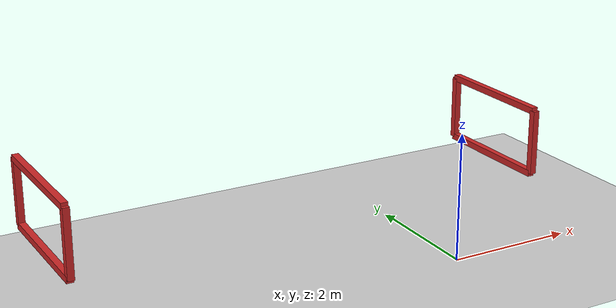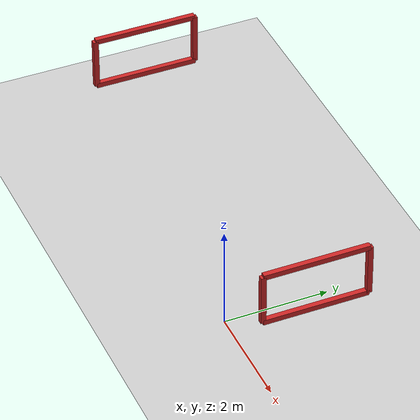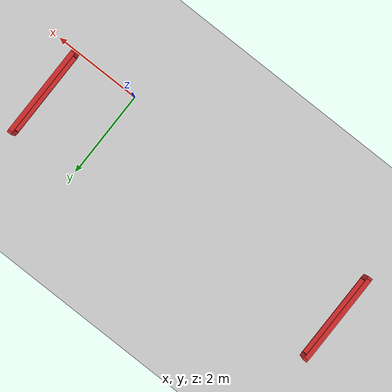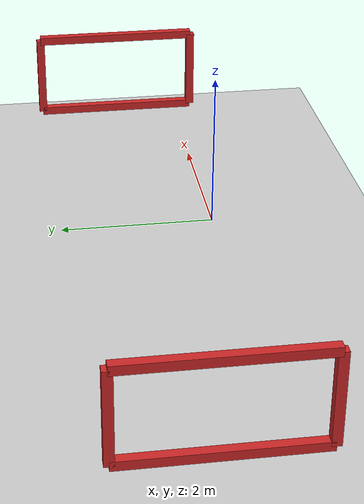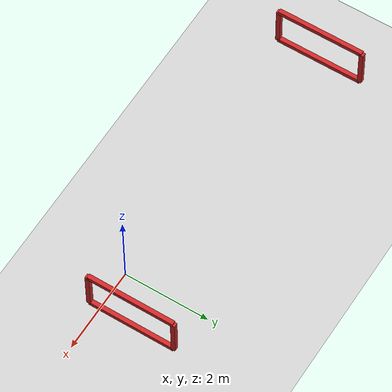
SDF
<?xml version="1.0" ?>
<sdf version="1.5">
  <world name="default">
    <!-- A ground plane -->
    <include>
      <uri>model://ground_plane</uri>
    </include>
    <!-- A global light source -->
    <include>
      <uri>model://sun</uri>
    </include>

    <!-- Only one ROS interface plugin is required per world, as any other plugin can connect a Gazebo
         topic to a ROS topic (or vise versa). -->
    <plugin name="ros_interface_plugin" filename="librotors_gazebo_ros_interface_plugin.so"/>

    <model name="right_wall1">
      <static>true</static>
      <pose>1.4 0.1 1.6 0 0 0</pose>
      <link name="link">
        <collision name="collision">
          <geometry>
            <box>
              <size>0.1 0.1 1.0</size>
            </box>
          </geometry>
        </collision>
        <visual name="visual">
          <geometry>
            <box>
              <size>0.1 0.1 1.0</size>
            </box>
          </geometry>
          <material>
            <script>
              <uri>file://media/materials/scripts/gazebo.material</uri>
              <name>Gazebo/RedGlow</name>
            </script>
          </material>
        </visual>
      </link>
    </model>
    <model name="left_wall1">
      <static>true</static>
      <pose>1.4 2.1 1.6 0 0 0</pose>
      <link name="link">
        <collision name="collision">
          <geometry>
            <box>
              <size>0.1 0.1 1.0</size>
            </box>
          </geometry>
        </collision>
        <visual name="visual">
          <geometry>
            <box>
              <size>0.1 0.1 1.0</size>
            </box>
          </geometry>
          <material>
            <script>
              <uri>file://media/materials/scripts/gazebo.material</uri>
              <name>Gazebo/RedGlow</name>
            </script>
          </material>
        </visual>
      </link>
    </model>
    <model name="up_wall1">
      <static>true</static>
      <pose>1.4 1.1 2.1 1.570796327 0 0</pose>
      <link name="link">
        <collision name="collision">
          <geometry>
            <box>
              <size>0.1 0.1 2.0</size>
            </box>
          </geometry>
        </collision>
        <visual name="visual">
          <geometry>
            <box>
              <size>0.1 0.1 2.0</size>
            </box>
          </geometry>
          <material>
            <script>
              <uri>file://media/materials/scripts/gazebo.material</uri>
              <name>Gazebo/RedGlow</name>
            </script>
          </material>
        </visual>
      </link>
    </model>
    <model name="down_wall1">
      <static>true</static>
      <pose>1.4 1.1 1.1 1.570796327 0 0</pose>
      <link name="link">
        <collision name="collision">
          <geometry>
            <box>
              <size>0.1 0.1 2.0</size>
            </box>
          </geometry>
        </collision>
        <visual name="visual">
          <geometry>
            <box>
              <size>0.1 0.1 2.0</size>
            </box>
          </geometry>
          <material>
            <script>
              <uri>file://media/materials/scripts/gazebo.material</uri>
              <name>Gazebo/RedGlow</name>
            </script>
          </material>
        </visual>
      </link>
    </model>

    <model name="right_wall8">
      <static>true</static>
      <pose>-6.0 0.0 1.6 0 0 0</pose>
      <link name="link">
        <collision name="collision">
          <geometry>
            <box>
              <size>0.1 0.1 1.0</size>
            </box>
          </geometry>
        </collision>
        <visual name="visual">
          <geometry>
            <box>
              <size>0.1 0.1 1.0</size>
            </box>
          </geometry>
          <material>
            <script>
              <uri>file://media/materials/scripts/gazebo.material</uri>
              <name>Gazebo/RedGlow</name>
            </script>
          </material>
        </visual>
      </link>
    </model>
    <model name="left_wall8">
      <static>true</static>
      <pose>-6.0 2.0 1.6 0 0 0</pose>
      <link name="link">
        <collision name="collision">
          <geometry>
            <box>
              <size>0.1 0.1 1.0</size>
            </box>
          </geometry>
        </collision>
        <visual name="visual">
          <geometry>
            <box>
              <size>0.1 0.1 1.0</size>
            </box>
          </geometry>
          <material>
            <script>
              <uri>file://media/materials/scripts/gazebo.material</uri>
              <name>Gazebo/RedGlow</name>
            </script>
          </material>
        </visual>
      </link>
    </model>
    <model name="up_wall8">
      <static>true</static>
      <pose>-6.0 1.0 2.1 1.570796327 0 0</pose>
      <link name="link">
        <collision name="collision">
          <geometry>
            <box>
              <size>0.1 0.1 2.0</size>
            </box>
          </geometry>
        </collision>
        <visual name="visual">
          <geometry>
            <box>
              <size>0.1 0.1 2.0</size>
            </box>
          </geometry>
          <material>
            <script>
              <uri>file://media/materials/scripts/gazebo.material</uri>
              <name>Gazebo/RedGlow</name>
            </script>
          </material>
        </visual>
      </link>
    </model>
    <model name="down_wall8">
      <static>true</static>
      <pose>-6.0 1.0 1.1 1.570796327 0 0</pose>
      <link name="link">
        <collision name="collision">
          <geometry>
            <box>
              <size>0.1 0.1 2.0</size>
            </box>
          </geometry>
        </collision>
        <visual name="visual">
          <geometry>
            <box>
              <size>0.1 0.1 2.0</size>
            </box>
          </geometry>
          <material>
            <script>
              <uri>file://media/materials/scripts/gazebo.material</uri>
              <name>Gazebo/RedGlow</name>
            </script>
          </material>
        </visual>
      </link>
    </model>

  </world>
</sdf>
